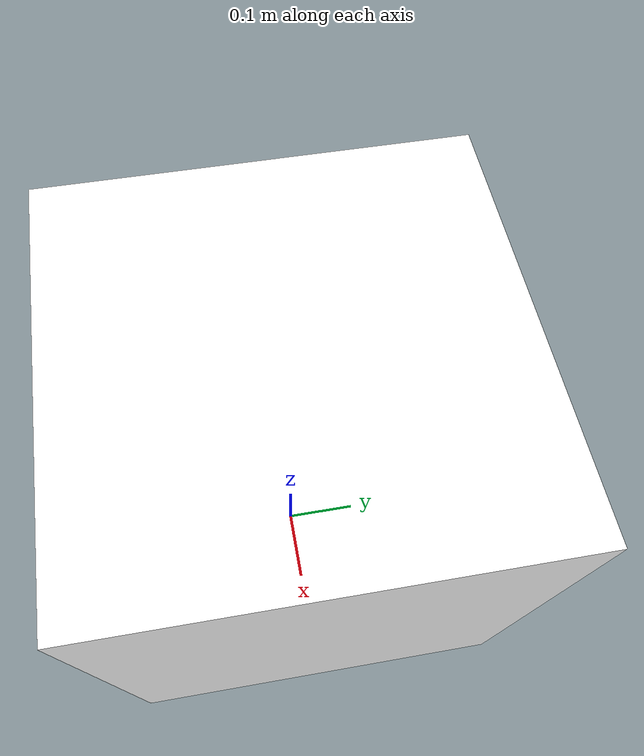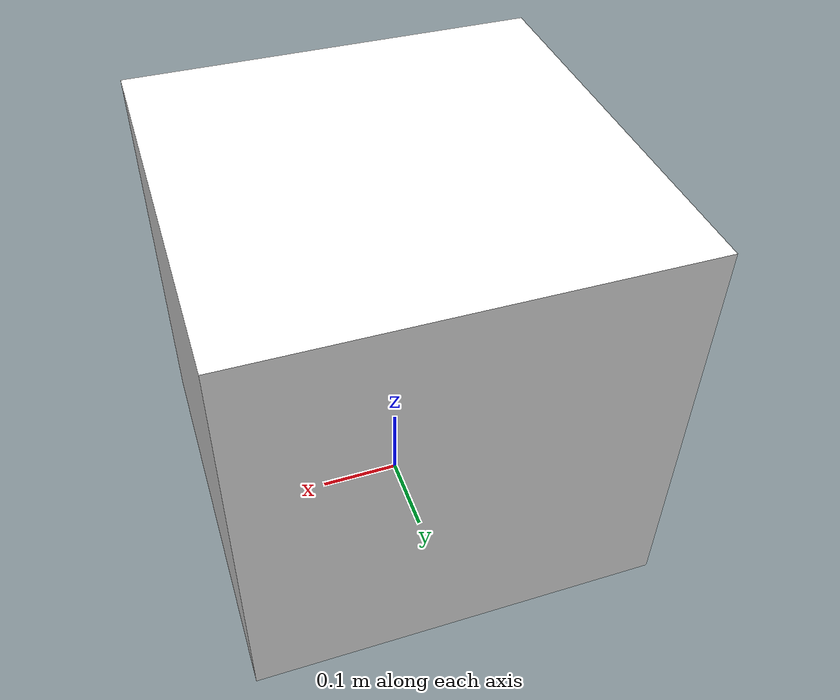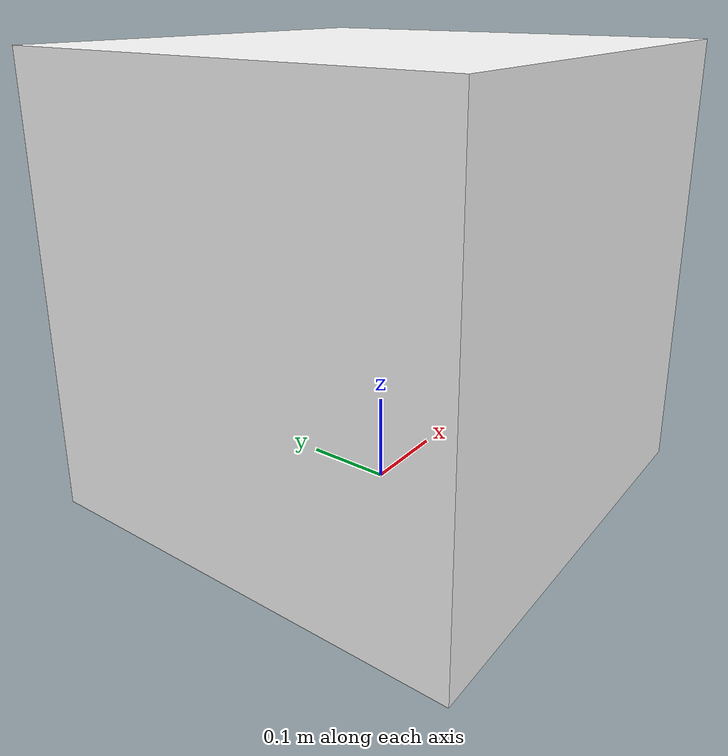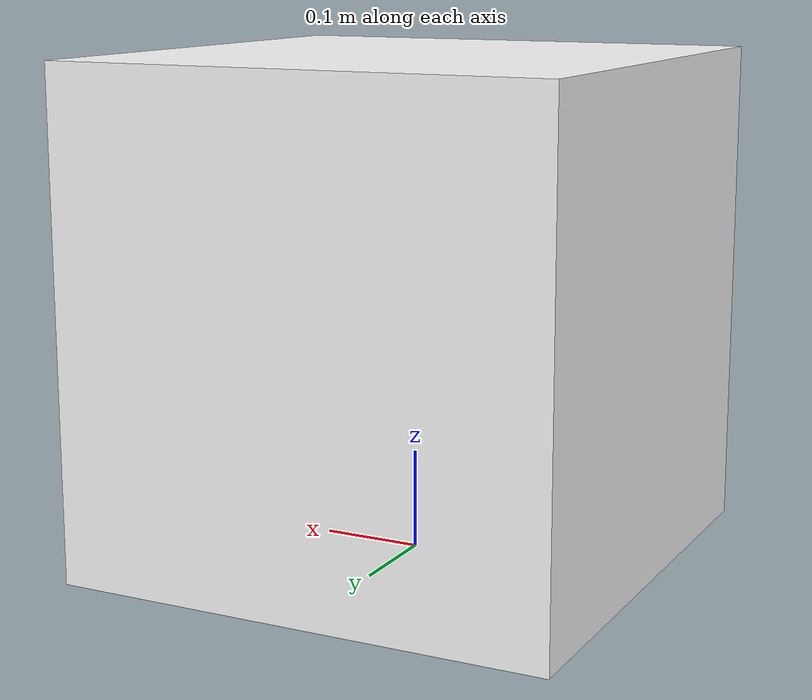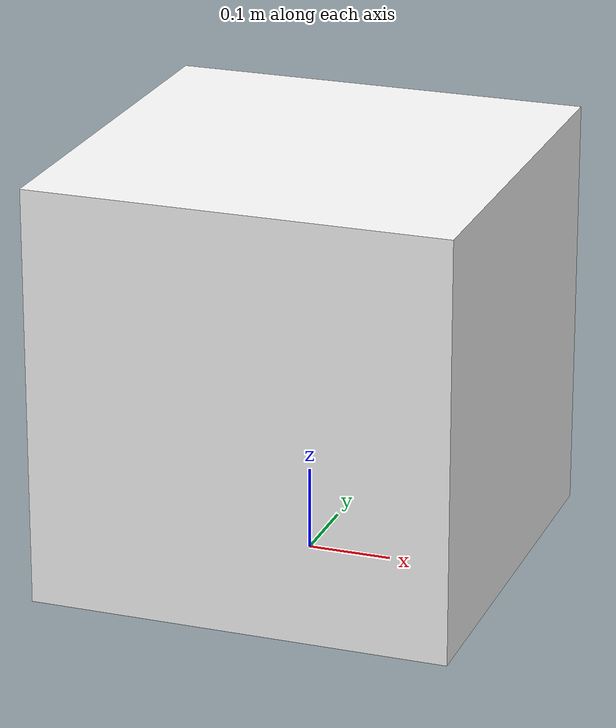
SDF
<!-- my_robot_package/models/box_bot/model.sdf -->
<sdf version="1.6">
  <model name="box_bot">
    <static>false</static>
    <link name="base_link">
      <pose>0 0 0.25 0 0 0</pose>
      <visual name="visual">
        <geometry>
          <box>
            <size>0.5 0.5 0.5</size>
          </box>
        </geometry>
        <material>
          <ambient>1 1 1 1</ambient>
          <diffuse>1 1 1 1</diffuse>
        </material>
      </visual>
      <collision name="collision">
        <geometry>
          <box>
            <size>0.5 0.5 0.5</size>
          </box>
        </geometry>
      </collision>
      <inertial>
        <mass>1.0</mass>
        <inertia>
          <ixx>0.083</ixx>
          <ixy>0.0</ixy>
          <ixz>0.0</ixz>
          <iyy>0.083</iyy>
          <iyz>0.0</iyz>
          <izz>0.083</izz>
        </inertia>
      </inertial>
    </link>

    <joint name="base_to_laser" type="fixed">
      <parent>base_link</parent>
      <child>laser</child>
      <pose>0.2 0 0.25 0 0 0</pose>
    </joint>

    <link name="laser">
      <pose>0.2 0 0.25 0 0 0</pose>
      <visual name="visual">
        <geometry>
          <cylinder>
            <radius>0.02</radius>
            <length>0.05</length>
          </cylinder>
        </geometry>
        <material>
          <ambient>0 0 0 1</ambient>
          <diffuse>0 0 0 1</diffuse>
        </material>
      </visual>
      <collision name="collision">
        <geometry>
          <cylinder>
            <radius>0.02</radius>
            <length>0.05</length>
          </cylinder>
        </geometry>
      </collision>
      <inertial>
        <mass>0.1</mass>
        <inertia>
          <ixx>0.0001</ixx>
          <ixy>0.0</ixy>
          <ixz>0.0</ixz>
          <iyy>0.0001</iyy>
          <iyz>0.0</iyz>
          <izz>0.0001</izz>
        </inertia>
      </inertial>
    </link>

    <plugin name="velocity_controller" filename="libgazebo_ros_planar_move.so">
      <robotNamespace>/box_bot</robotNamespace>
      <commandTopic>/cmd_vel</commandTopic>
      <odometryTopic>/odom</odometryTopic>
      <odometryFrame>odom</odometryFrame>
      <robotBaseFrame>base_link</robotBaseFrame>
      <odometryRate>30</odometryRate>
      <cmdVelRate>30</cmdVelRate>
      <gaussianNoise>0.01</gaussianNoise>
      <publishOdomTF>true</publishOdomTF>
    </plugin>

    <plugin name="laser" filename="libgazebo_ros_laser.so">
      <robotNamespace>/box_bot</robotNamespace>
      <frameName>laser</frameName>
      <topicName>/scan</topicName>
      <gaussianNoise>0.01</gaussianNoise>
      <updateRate>30</updateRate>
      <hokuyoMinAngle>-1.57</hokuyoMinAngle>
      <hokuyoMaxAngle>1.57</hokuyoMaxAngle>
      <hokuyoMinRange>0.0</hokuyoMinRange>
      <hokuyoMaxRange>10.0</hokuyoMaxRange>
      <hokuyoResolution>0.0058</hokuyoResolution>
    </plugin>
  </model>
</sdf>
